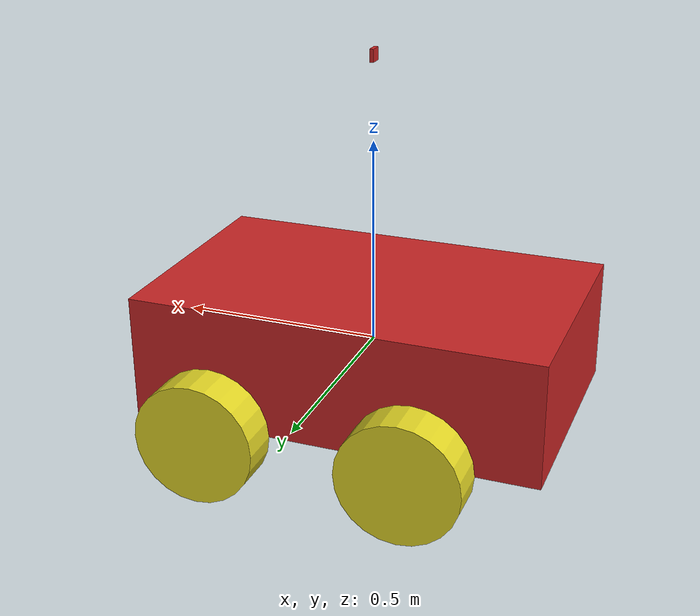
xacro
<?xml version="1.0"?>
<robot name="differential_drive_robot" xmlns:xacro="http://www.ros.org/wiki/xacro">

<xacro:property name="body_link_x_dim" value="1"/>
<xacro:property name="body_link_y_dim" value="0.6"/>
<xacro:property name="body_link_z_dim" value="0.3"/>

<xacro:property name="wheel_link_radius" value="0.15"/>
<xacro:property name="wheel_link_length" value="0.1"/>
<xacro:property name="wheel_link_z_location" value="-0.1"/>

<xacro:property name="body_density" value="3500.0"/>
<xacro:property name="wheel_density" value="3500.0"/>

<xacro:property name="pi_const" value="3.14159265"/>

<xacro:property name="body_mass" value="${body_density*body_link_x_dim*body_link_y_dim*body_link_z_dim}"/>
<xacro:property name="wheel_mass" value="${wheel_density*pi_const*wheel_link_radius*wheel_link_radius*wheel_link_length}"/>

<xacro:property name="Iz_wheel" value="${0.5*wheel_mass*wheel_link_radius*wheel_link_radius}" />
<xacro:property name="I_wheel" value="${(1.0/12.0)*wheel_mass*(3.0*wheel_link_radius*wheel_link_radius+wheel_link_length*wheel_link_length)}" />

<joint name="camera_joint" type="fixed">
    <parent link="body_link"/>
    <child link="camera_link"/>
    <origin xyz="0 0 0.7" rpy="0 0 0"/>
</joint>

<link name="camera_link">
    <visual>
        <geometry>
            <box size="0.010 0.03 0.03"/>
        </geometry>
    </visual>
</link>

<joint name="camera_optical_joint" type="fixed">
    <parent link="camera_link"/>
    <child link="camera_link_optical"/>
    <origin xyz="0 0 0" rpy="-1.57 0 -1.57"/>
</joint>

<link name="camera_link_optical"></link>

<xacro:macro name="inertia_wheel">
    <inertial>
    <origin rpy="0 0 0" xyz="0 0 0"/>
    <mass value="${wheel_mass}"/>
    <inertia ixx="${I_wheel}" ixy="0.0" ixz="0.0" iyy="${I_wheel}" iyz="0.0" izz="${Iz_wheel}" />
    </inertial>
</xacro:macro>

<xacro:include filename="$(find mobile_robot)/model/robot.gazebo" />

<link name="dummy" />
<joint name="dummy_joint" type="fixed">
    <parent link="dummy"/>
    <child link="body_link"/>
</joint>

<link name="body_link">
    <visual>
        <geometry>
            <box size="${body_link_x_dim} ${body_link_y_dim} ${body_link_z_dim}" />
        </geometry>
        <origin rpy="0 0 0" xyz="0 0 0"/>
    </visual>
    <collision>
        <geometry>
            <box size="1.0 0.6 0.3" />
        </geometry>
        <origin rpy="0 0 0" xyz="0 0 0"/>
    </collision>
    <inertial>
        <origin rpy="0 0 0" xyz="0 0 0"/>
        <mass value="${body_mass}"/>
        <inertia ixx="${(1.0/12.0)*body_mass*(body_link_y_dim*body_link_y_dim+body_link_z_dim*body_link_z_dim)}"
                ixy="0.0" ixz="0.0" iyz="0.0"
                iyy="${(1.0/12.0)*body_mass*(body_link_x_dim*body_link_x_dim+body_link_z_dim*body_link_z_dim)}"
                izz="${(1.0/12.0)*body_mass*(body_link_y_dim*body_link_y_dim+body_link_x_dim*body_link_x_dim)}"/>
    </inertial>
</link>

<joint name="wheel1_joint" type="continuous" >
    <parent link="body_link"/>
    <child link="wheel1_link"/>
    <origin xyz="-0.2 -0.35 -0.15" rpy="0 0 0" />
    <axis xyz="0 1 0"/>
    <limit effort="1000" velocity="1000"/>
    <dynamics damping="1.0" friction="2.0"/>
</joint>

<link name="wheel1_link">
    <visual>
        <origin rpy="1.570795 0 0" xyz="0 0 0"/>
        <geometry>
            <cylinder length="0.1" radius="0.15"/>
        </geometry>
    </visual>
    <collision>
        <origin rpy="1.570795 0 0" xyz="0 0 0"/>
        <geometry>
            <cylinder length="${wheel_link_length}" radius="${wheel_link_radius}"/>
        </geometry>
    </collision>
<xacro:inertia_wheel />
</link>

<joint name="wheel2_joint" type="continuous" >
    <parent link="body_link"/>
    <child link="wheel2_link"/>
    <origin xyz="-0.2 0.35 -0.15" rpy="0 0 0" />
    <axis xyz="0 1 0"/>
    <limit effort="1000" velocity="1000"/>
    <dynamics damping="1.0" friction="2.0"/>
</joint>

<link name="wheel2_link">
    <visual>
        <origin rpy="1.570795 0 0" xyz="0 0 0"/>
        <geometry>
            <cylinder length="${wheel_link_length}" radius="${wheel_link_radius}"/>
        </geometry>
    </visual>
    <collision>
        <origin rpy="1.570795 0 0" xyz="0 0 0"/>
        <geometry>
            <cylinder length="${wheel_link_length}" radius="${wheel_link_radius}"/>
        </geometry>
    </collision>
<xacro:inertia_wheel />
</link>

<joint name="wheel3_joint" type="continuous" >
    <parent link="body_link"/>
    <child link="wheel3_link"/>
    <origin xyz="0.3 -0.35 -0.15" rpy="0 0 0" />
    <axis xyz="0 1 0"/>
    <limit effort="1000" velocity="1000"/>
    <dynamics damping="1.0" friction="2.0"/>
</joint>

<link name="wheel3_link">
    <visual>
        <origin rpy="1.570795 0 0" xyz="0 0 0"/>
        <geometry>
            <cylinder length="${wheel_link_length}" radius="${wheel_link_radius}"/>
        </geometry>
    </visual>
    <collision>
        <origin rpy="1.570795 0 0" xyz="0 0 0"/>
        <geometry>
            <cylinder length="${wheel_link_length}" radius="${wheel_link_radius}"/>
        </geometry>
    </collision>
<xacro:inertia_wheel />
</link>

<joint name="wheel4_joint" type="continuous" >
    <parent link="body_link"/>
    <child link="wheel4_link"/>
    <origin xyz="0.3 0.35 -0.15" rpy="0 0 0" />
    <axis xyz="0 1 0"/>
    <limit effort="1000" velocity="1000"/>
    <dynamics damping="1.0" friction="2.0"/>
</joint>

<link name="wheel4_link">
    <visual>
        <origin rpy="1.570795 0 0" xyz="0 0 0"/>
        <geometry>
            <cylinder length="${wheel_link_length}" radius="${wheel_link_radius}"/>
        </geometry>
    </visual>
    <collision>
        <origin rpy="1.570795 0 0" xyz="0 0 0"/>
        <geometry>
            <cylinder length="${wheel_link_length}" radius="${wheel_link_radius}"/>
        </geometry>
    </collision>
<xacro:inertia_wheel />
</link>

</robot>
